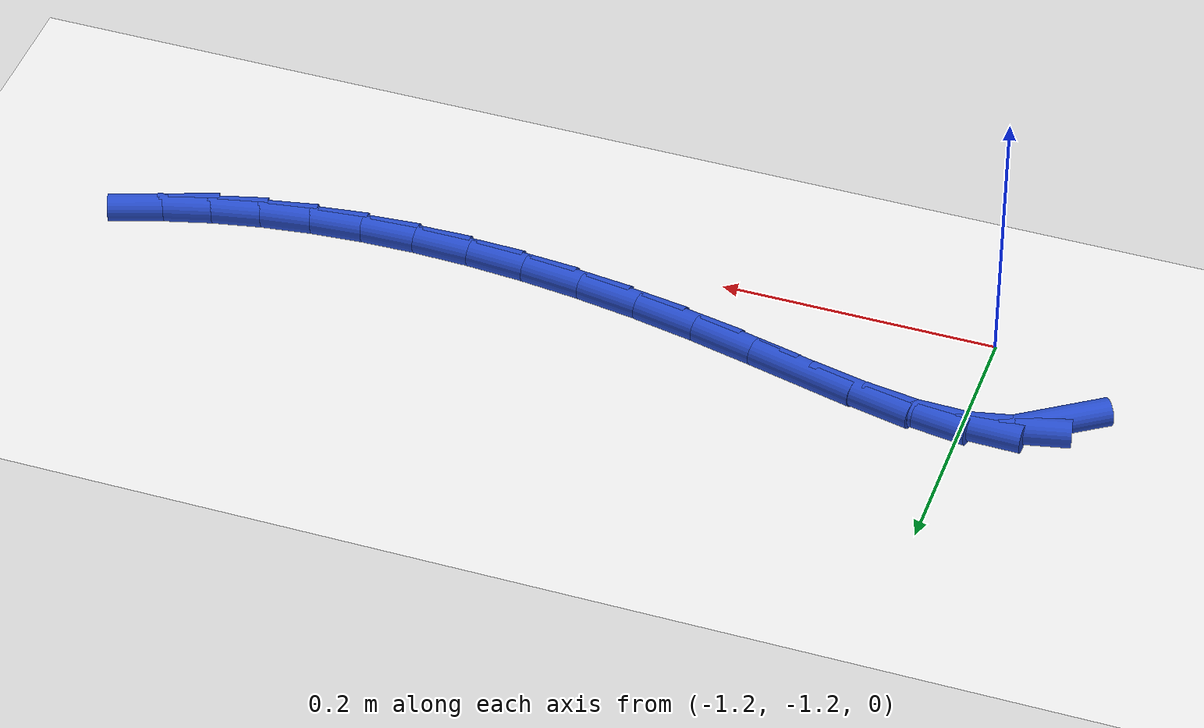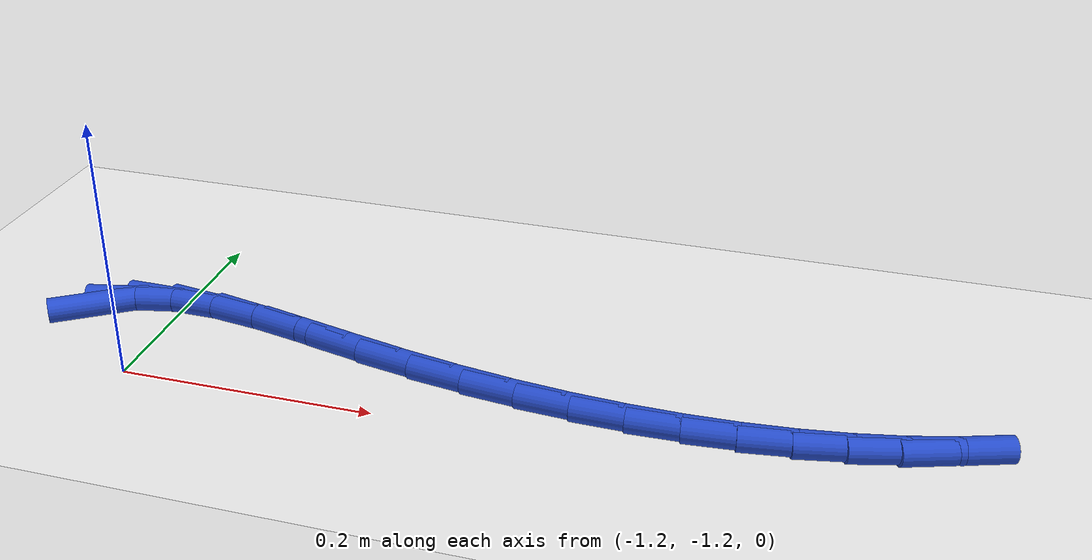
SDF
<sdf version="1.6">
 <world name="default">
  <model name="ground_plane">
   <static>1</static>
   <link name="link">
    <collision name="collision">
     <geometry><plane><normal>0 0 1</normal><size>100 100</size></plane></geometry>
     <surface><friction><ode><mu>100</mu><mu2>50</mu2></ode></friction></surface>
    </collision>
    <visual name="visual">
     <cast_shadows>0</cast_shadows>
     <geometry><plane><normal>0 0 1</normal><size>100 100</size></plane></geometry>
     <material>
      <script><uri>file://media/materials/scripts/gazebo.material</uri><name>Gazebo/WhiteGlow</name></script>
     </material>
    </visual>
   </link>
  </model>
  <model name="line">
   <link name="link_166">
    <pose>-1.2609900471039208 -1.1286460339105253 0.01 0 1.57 0.5948920249926452</pose>
    <collision name="collision">
     <geometry><cylinder><radius>0.01</radius><length>0.08</length></cylinder></geometry>
    </collision>
    <visual name="visual">
     <material>
      <script><name>Gazebo/Blue</name><uri>file://media/materials/scripts/gazebo.material</uri></script>
     </material>
     <geometry><cylinder><radius>0.01</radius><length>0.08</length></cylinder></geometry>
    </visual>
   </link>
   <link name="link_167">
    <pose>-1.2367681716427308 -1.1122559596441244 0.01 0 1.57 0.21753174877785236</pose>
    <collision name="collision">
     <geometry><cylinder><radius>0.01</radius><length>0.08</length></cylinder></geometry>
    </collision>
    <visual name="visual">
     <material>
      <script><name>Gazebo/Blue</name><uri>file://media/materials/scripts/gazebo.material</uri></script>
     </material>
     <geometry><cylinder><radius>0.01</radius><length>0.08</length></cylinder></geometry>
    </visual>
   </link>
   <link name="link_168">
    <pose>-1.205528980454498 -1.1053511871996806 0.01 0 1.57 -0.015715502856154407</pose>
    <collision name="collision">
     <geometry><cylinder><radius>0.01</radius><length>0.08</length></cylinder></geometry>
    </collision>
    <visual name="visual">
     <material>
      <script><name>Gazebo/Blue</name><uri>file://media/materials/scripts/gazebo.material</uri></script>
     </material>
     <geometry><cylinder><radius>0.01</radius><length>0.08</length></cylinder></geometry>
    </visual>
   </link>
   <link name="link_169">
    <pose>-1.1686672351368872 -1.10593053575955 0.01 0 1.57 -0.1464817469017374</pose>
    <collision name="collision">
     <geometry><cylinder><radius>0.01</radius><length>0.08</length></cylinder></geometry>
    </collision>
    <visual name="visual">
     <material>
      <script><name>Gazebo/Blue</name><uri>file://media/materials/scripts/gazebo.material</uri></script>
     </material>
     <geometry><cylinder><radius>0.01</radius><length>0.08</length></cylinder></geometry>
    </visual>
   </link>
   <link name="link_170">
    <pose>-1.127577697287566 -1.1119928245060884 0.01 0 1.57 -0.21396640853649163</pose>
    <collision name="collision">
     <geometry><cylinder><radius>0.01</radius><length>0.08</length></cylinder></geometry>
    </collision>
    <visual name="visual">
     <material>
      <script><name>Gazebo/Blue</name><uri>file://media/materials/scripts/gazebo.material</uri></script>
     </material>
     <geometry><cylinder><radius>0.01</radius><length>0.08</length></cylinder></geometry>
    </visual>
   </link>
   <link name="link_171">
    <pose>-1.0836551285041993 -1.121536872621653 0.01 0 1.57 -0.23842010020180615</pose>
    <collision name="collision">
     <geometry><cylinder><radius>0.01</radius><length>0.08</length></cylinder></geometry>
    </collision>
    <visual name="visual">
     <material>
      <script><name>Gazebo/Blue</name><uri>file://media/materials/scripts/gazebo.material</uri></script>
     </material>
     <geometry><cylinder><radius>0.01</radius><length>0.08</length></cylinder></geometry>
    </visual>
   </link>
   <link name="link_172">
    <pose>-1.038294290384453 -1.132561499288599 0.01 0 1.57 -0.22752520213014985</pose>
    <collision name="collision">
     <geometry><cylinder><radius>0.01</radius><length>0.08</length></cylinder></geometry>
    </collision>
    <visual name="visual">
     <material>
      <script><name>Gazebo/Blue</name><uri>file://media/materials/scripts/gazebo.material</uri></script>
     </material>
     <geometry><cylinder><radius>0.01</radius><length>0.08</length></cylinder></geometry>
    </visual>
   </link>
   <link name="link_173">
    <pose>-0.9928829733507493 -1.1430757810957504 0.01 0 1.57 -0.19329950037777138</pose>
    <collision name="collision">
     <geometry><cylinder><radius>0.01</radius><length>0.08</length></cylinder></geometry>
    </collision>
    <visual name="visual">
     <material>
      <script><name>Gazebo/Blue</name><uri>file://media/materials/scripts/gazebo.material</uri></script>
     </material>
     <geometry><cylinder><radius>0.01</radius><length>0.08</length></cylinder></geometry>
    </visual>
   </link>
   <link name="link_174">
    <pose>-0.9483274996817336 -1.151797228185786 0.01 0 1.57 -0.15482125716023087</pose>
    <collision name="collision">
     <geometry><cylinder><radius>0.01</radius><length>0.08</length></cylinder></geometry>
    </collision>
    <visual name="visual">
     <material>
      <script><name>Gazebo/Blue</name><uri>file://media/materials/scripts/gazebo.material</uri></script>
     </material>
     <geometry><cylinder><radius>0.01</radius><length>0.08</length></cylinder></geometry>
    </visual>
   </link>
   <link name="link_175">
    <pose>-0.9047491132477921 -1.1585985172352562 0.01 0 1.57 -0.11372331602055952</pose>
    <collision name="collision">
     <geometry><cylinder><radius>0.01</radius><length>0.08</length></cylinder></geometry>
    </collision>
    <visual name="visual">
     <material>
      <script><name>Gazebo/Blue</name><uri>file://media/materials/scripts/gazebo.material</uri></script>
     </material>
     <geometry><cylinder><radius>0.01</radius><length>0.08</length></cylinder></geometry>
    </visual>
   </link>
   <link name="link_176">
    <pose>-0.8621967762696816 -1.1634586803392089 0.01 0 1.57 -0.06975779882237093</pose>
    <collision name="collision">
     <geometry><cylinder><radius>0.01</radius><length>0.08</length></cylinder></geometry>
    </collision>
    <visual name="visual">
     <material>
      <script><name>Gazebo/Blue</name><uri>file://media/materials/scripts/gazebo.material</uri></script>
     </material>
     <geometry><cylinder><radius>0.01</radius><length>0.08</length></cylinder></geometry>
    </visual>
   </link>
   <link name="link_177">
    <pose>-0.8207194509681595 -1.166356749592693 0.01 0 1.57 -0.022670997512334774</pose>
    <collision name="collision">
     <geometry><cylinder><radius>0.01</radius><length>0.08</length></cylinder></geometry>
    </collision>
    <visual name="visual">
     <material>
      <script><name>Gazebo/Blue</name><uri>file://media/materials/scripts/gazebo.material</uri></script>
     </material>
     <geometry><cylinder><radius>0.01</radius><length>0.08</length></cylinder></geometry>
    </visual>
   </link>
   <link name="link_178">
    <pose>-0.7803660995639815 -1.167271757090757 0.01 0 1.57 0.027787909782600023</pose>
    <collision name="collision">
     <geometry><cylinder><radius>0.01</radius><length>0.08</length></cylinder></geometry>
    </collision>
    <visual name="visual">
     <material>
      <script><name>Gazebo/Blue</name><uri>file://media/materials/scripts/gazebo.material</uri></script>
     </material>
     <geometry><cylinder><radius>0.01</radius><length>0.08</length></cylinder></geometry>
    </visual>
   </link>
   <link name="link_179">
    <pose>-0.7411856842779064 -1.1661827349284493 0.01 0 1.57 0.08185414290209791</pose>
    <collision name="collision">
     <geometry><cylinder><radius>0.01</radius><length>0.08</length></cylinder></geometry>
    </collision>
    <visual name="visual">
     <material>
      <script><name>Gazebo/Blue</name><uri>file://media/materials/scripts/gazebo.material</uri></script>
     </material>
     <geometry><cylinder><radius>0.01</radius><length>0.08</length></cylinder></geometry>
    </visual>
   </link>
   <link name="link_180">
    <pose>-0.7032271673306907 -1.1630687152008192 0.01 0 1.57 0.139729816543163</pose>
    <collision name="collision">
     <geometry><cylinder><radius>0.01</radius><length>0.08</length></cylinder></geometry>
    </collision>
    <visual name="visual">
     <material>
      <script><name>Gazebo/Blue</name><uri>file://media/materials/scripts/gazebo.material</uri></script>
     </material>
     <geometry><cylinder><radius>0.01</radius><length>0.08</length></cylinder></geometry>
    </visual>
   </link>
   <link name="link_181">
    <pose>-0.6665395109430909 -1.1579087300029147 0.01 0 1.57 0.20156120946762415</pose>
    <collision name="collision">
     <geometry><cylinder><radius>0.01</radius><length>0.08</length></cylinder></geometry>
    </collision>
    <visual name="visual">
     <material>
      <script><name>Gazebo/Blue</name><uri>file://media/materials/scripts/gazebo.material</uri></script>
     </material>
     <geometry><cylinder><radius>0.01</radius><length>0.08</length></cylinder></geometry>
    </visual>
   </link>
   <link name="link_182">
    <pose>-0.6311716773358635 -1.1506818114297839 0.01 0 1.57 0.2674111259300825</pose>
    <collision name="collision">
     <geometry><cylinder><radius>0.01</radius><length>0.08</length></cylinder></geometry>
    </collision>
    <visual name="visual">
     <material>
      <script><name>Gazebo/Blue</name><uri>file://media/materials/scripts/gazebo.material</uri></script>
     </material>
     <geometry><cylinder><radius>0.01</radius><length>0.08</length></cylinder></geometry>
    </visual>
   </link>
   <link name="link_183">
    <pose>-0.5971726287297674 -1.1413669915764768 0.01 0 1.57 0.3372279570924698</pose>
    <collision name="collision">
     <geometry><cylinder><radius>0.01</radius><length>0.08</length></cylinder></geometry>
    </collision>
    <visual name="visual">
     <material>
      <script><name>Gazebo/Blue</name><uri>file://media/materials/scripts/gazebo.material</uri></script>
     </material>
     <geometry><cylinder><radius>0.01</radius><length>0.08</length></cylinder></geometry>
    </visual>
   </link>
  </model>
 </world>
</sdf>
